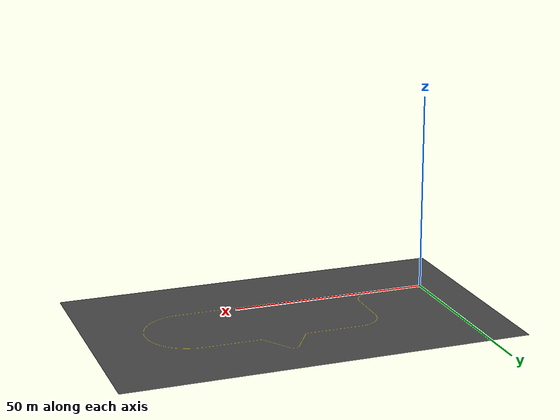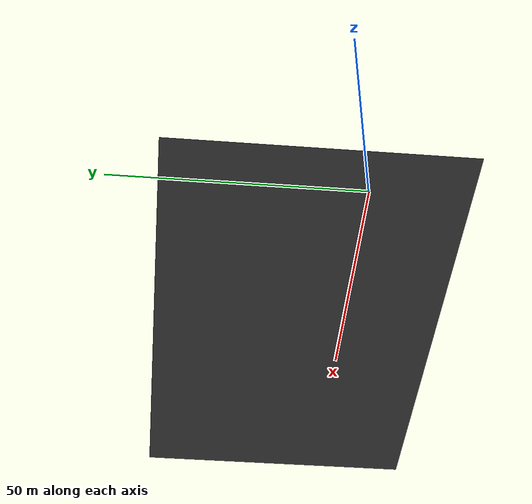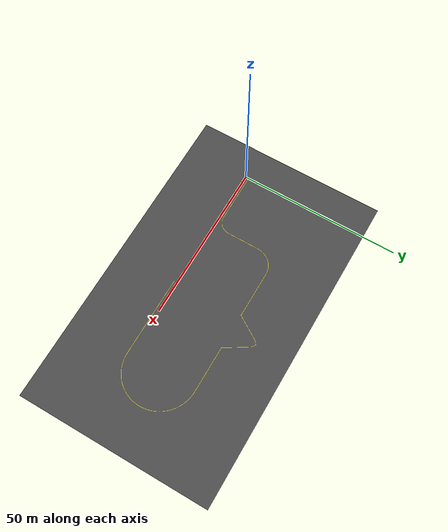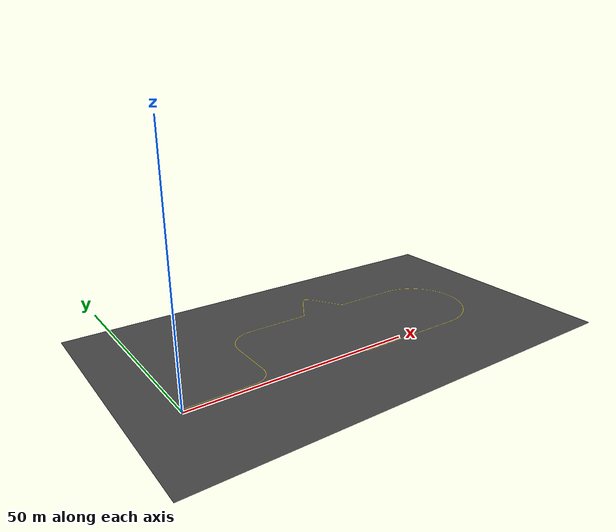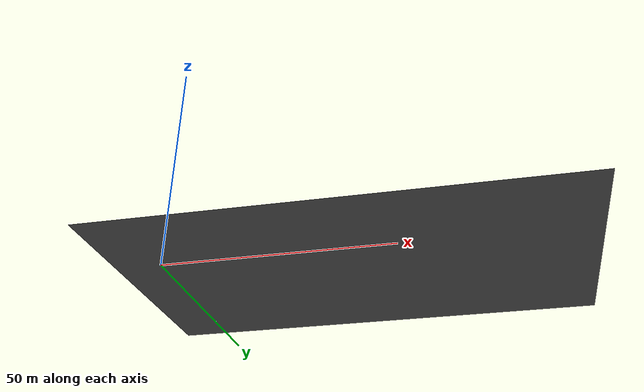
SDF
<?xml version="1.0" ?>
<sdf version="1.6">
  <model name="curved_track">
    <static>true</static>
    <link name="link">
      <collision name="collision">
        <geometry>
          <mesh>
            <uri>model://curved_track/meshes/track.dae</uri>
          </mesh>
        </geometry>
        <surface>
          <friction>
            <ode>
              <mu>1.0</mu>
              <mu2>1.0</mu2>
            </ode>
          </friction>
        </surface>
      </collision>
      <visual name="visual">
        <geometry>
          <mesh>
            <uri>model://curved_track/meshes/track.dae</uri>
          </mesh>
        </geometry>
      </visual>
    </link>
  </model>
</sdf>
